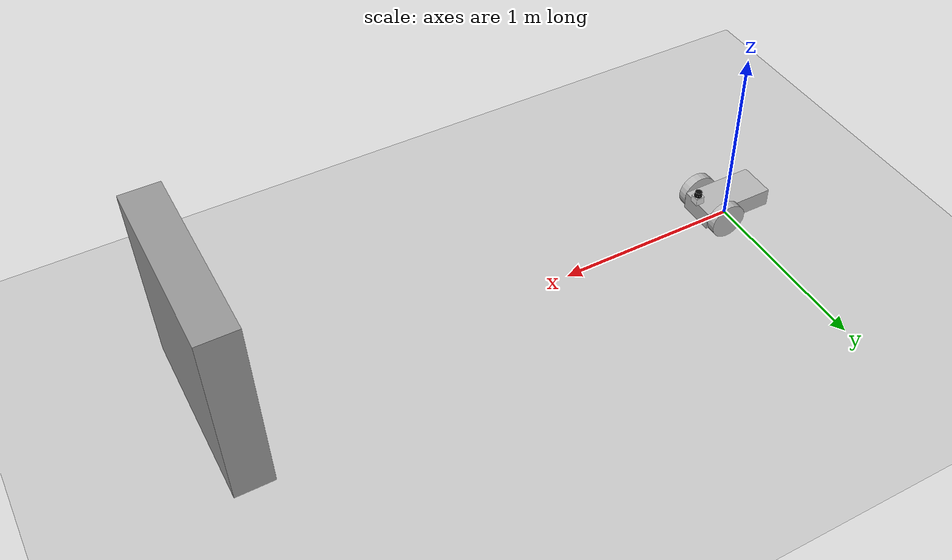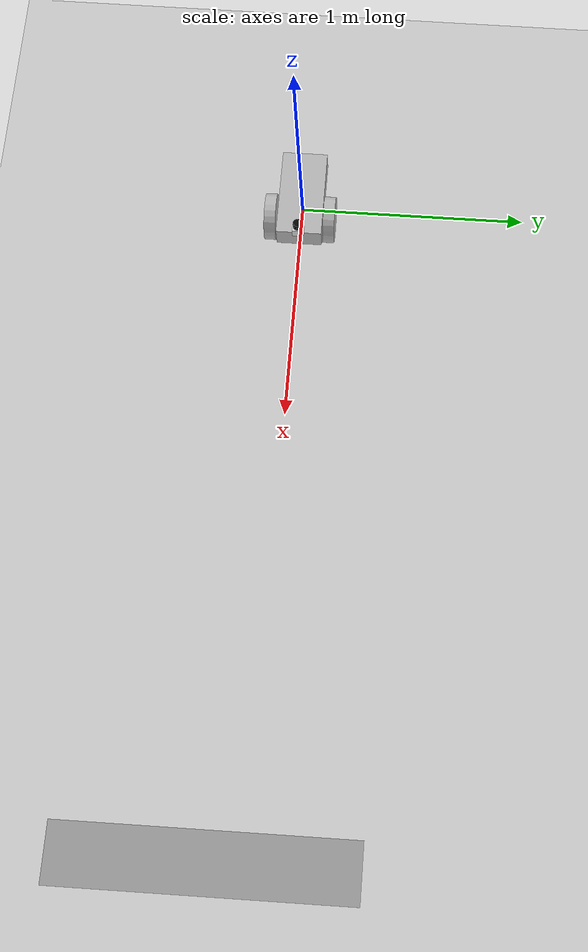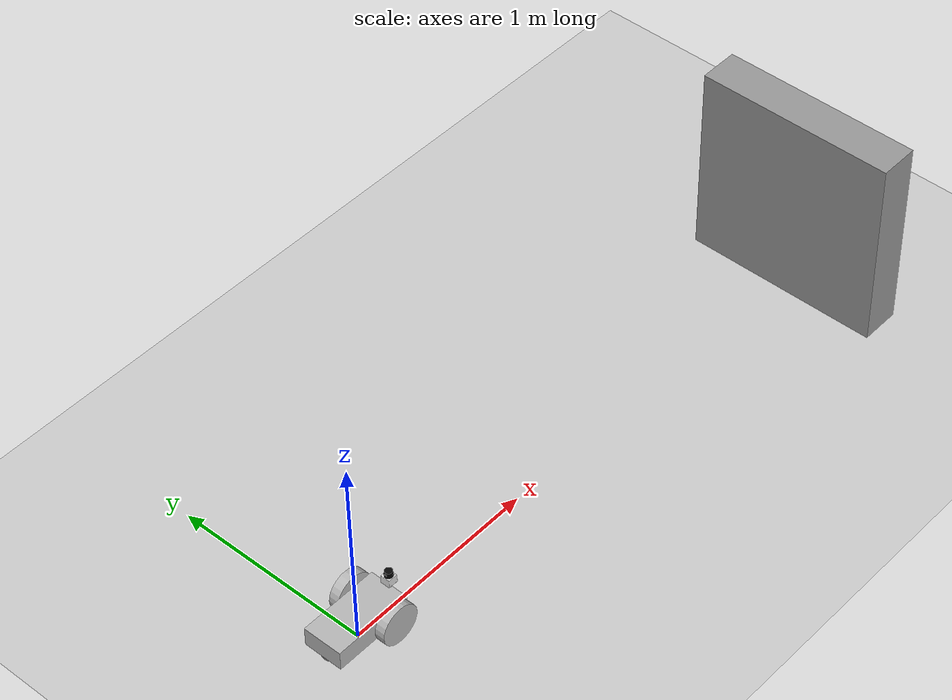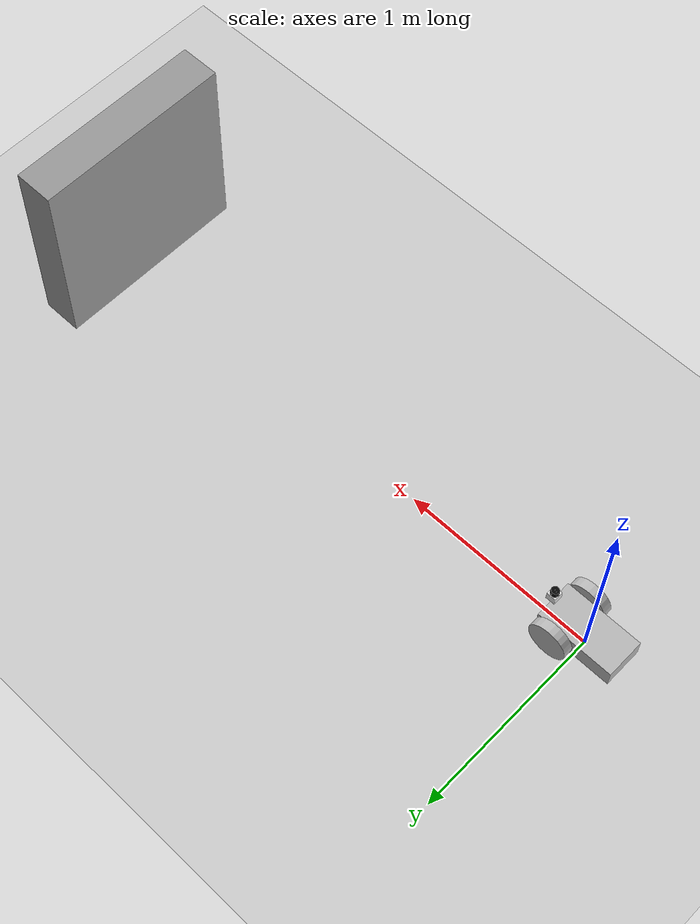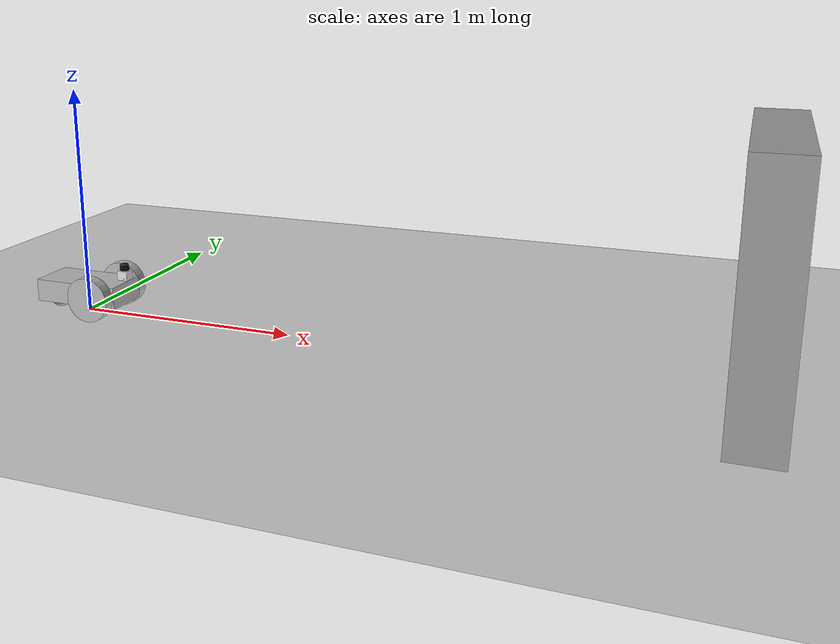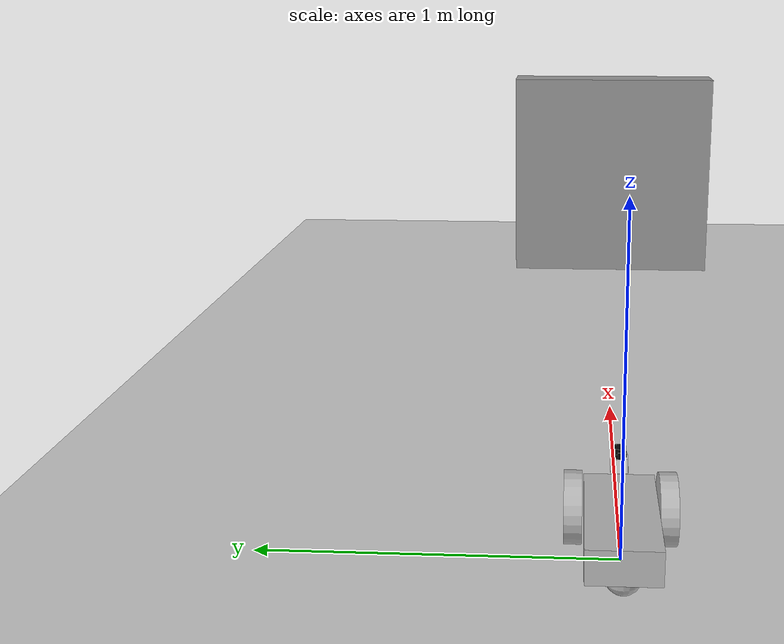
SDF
<sdf version="1.6">
 <world name="default">
  <light name="sun" type="directional">
   <pose>0 0 10 0 -0 0</pose>
   <diffuse>0.8 0.8 0.8 1</diffuse>
   <specular>0.2 0.2 0.2 1</specular>
   <attenuation>
    <range>1000</range>
    <constant>0.9</constant>
    <linear>0.01</linear>
    <quadratic>0.001</quadratic>
   </attenuation>
   <direction>-0.5 0.1 -0.9</direction>
  </light>
  <model name="ground_plane">
   <static>1</static>
   <link name="link">
    <collision name="collision">
     <geometry><plane><normal>0 0 1</normal><size>100 100</size></plane></geometry>
     <surface><friction><ode><mu>100</mu><mu2>50</mu2></ode></friction></surface>
    </collision>
    <visual name="visual">
     <cast_shadows>0</cast_shadows>
     <geometry><plane><normal>0 0 1</normal><size>100 100</size></plane></geometry>
     <material>
      <script><uri>file://media/materials/scripts/gazebo.material</uri><name>Gazebo/Grey</name></script>
     </material>
    </visual>
   </link>
  </model>
  <gravity>0 0 -9.8</gravity>
  <magnetic_field>6e-06 2.3e-05 -4.2e-05</magnetic_field>
  <atmosphere type="adiabatic"/>
  <physics name="default_physics" default="0" type="ode">
   <max_step_size>0.001</max_step_size>
   <real_time_factor>1</real_time_factor>
   <real_time_update_rate>1000</real_time_update_rate>
  </physics>
  <scene><ambient>0.4 0.4 0.4 1</ambient><background>0.7 0.7 0.7 1</background><shadows>1</shadows></scene>
  <spherical_coordinates>
   <surface_model>EARTH_WGS84</surface_model>
   <latitude_deg>0</latitude_deg>
   <longitude_deg>0</longitude_deg>
   <elevation>0</elevation>
   <heading_deg>0</heading_deg>
  </spherical_coordinates>
  <model name="unit_box">
   <pose>2.88406 -0.052854 0.5 0 -0 0</pose>
   <link name="link">
    <inertial>
     <mass>1</mass>
     <inertia>
      <ixx>0.166667</ixx>
      <ixy>0</ixy>
      <ixz>0</ixz>
      <iyy>0.166667</iyy>
      <iyz>0</iyz>
      <izz>0.166667</izz>
     </inertia>
    </inertial>
    <collision name="collision"><geometry><box><size>0.2 1 1</size></box></geometry></collision>
    <visual name="visual">
     <geometry><box><size>0.2 1 1</size></box></geometry>
     <material>
      <script><name>Gazebo/Grey</name><uri>file://media/materials/scripts/gazebo.material</uri></script>
     </material>
    </visual>
   </link>
  </model>
  <model name="laser">
   <static>false</static>
   <link name="chassis">
    <pose>0 0 .1 0 0 0</pose>
    <collision name="collision"><geometry><box><size>.4 .2 .1</size></box></geometry></collision>
    <visual name="visual"><geometry><box><size>.4 .2 .1</size></box></geometry></visual>
    <collision name="caster_collision">
     <pose>-0.15 0 -0.05 0 0 0</pose>
     <geometry><sphere><radius>.05</radius></sphere></geometry>
     <surface><friction><ode><mu>0</mu><mu2>0</mu2><slip1>1.0</slip1><slip2>1.0</slip2></ode></friction></surface>
    </collision>
    <visual name="caster_visual">
     <pose>-0.15 0 -0.05 0 0 0</pose>
     <geometry><sphere><radius>.05</radius></sphere></geometry>
    </visual>
   </link>
   <link name="left_wheel">
    <pose>0.1 0.13 0.1 0 1.5707 1.5707</pose>
    <collision name="collision">
     <geometry><cylinder><radius>.1</radius><length>.05</length></cylinder></geometry>
    </collision>
    <visual name="visual">
     <geometry><cylinder><radius>.1</radius><length>.05</length></cylinder></geometry>
    </visual>
   </link>
   <link name="right_wheel">
    <pose>0.1 -0.13 0.1 0 1.5707 1.5707</pose>
    <collision name="collision">
     <geometry><cylinder><radius>.1</radius><length>.05</length></cylinder></geometry>
    </collision>
    <visual name="visual">
     <geometry><cylinder><radius>.1</radius><length>.05</length></cylinder></geometry>
    </visual>
   </link>
   <joint type="revolute" name="left_wheel_hinge">
    <pose>0 0 -0.03 0 0 0</pose>
    <child>left_wheel</child>
    <parent>chassis</parent>
    <axis><xyz>0 0 1</xyz></axis>
   </joint>
   <joint type="revolute" name="right_wheel_hinge">
    <pose>0 0 0.03 0 0 0</pose>
    <child>right_wheel</child>
    <parent>chassis</parent>
    <axis><xyz>0 0 1</xyz></axis>
   </joint>
   <include><uri>model://hokuyo</uri><pose>0.2 0 0.2 0 0 0</pose></include>
   <joint name="hokuyo_joint" type="fixed"><child>hokuyo::link</child><parent>chassis</parent></joint>
  </model>
 </world>
</sdf>

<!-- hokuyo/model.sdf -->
<sdf version="1.4">
  <model name="hokuyo">
    <link name="link">
      <inertial>
        <mass>0.1</mass>
      </inertial>
      <visual name="visual">
        <geometry>
          <mesh>
            <uri>model://hokuyo/meshes/hokuyo.dae</uri>
          </mesh>
        </geometry>
      </visual>
      <sensor name="laser" type="ray">
        <pose>0.01 0 0.03 0 -0 0</pose>
        <ray>
          <scan>
            <horizontal>
              <samples>640</samples>
              <resolution>1</resolution>
              <min_angle>-2.26889</min_angle>
              <max_angle>2.268899</max_angle>
            </horizontal>
          </scan>
          <range>
            <min>0.08</min>
            <max>10</max>
            <resolution>0.01</resolution>
          </range>
        </ray>
        <plugin name="laser" filename="libRayPlugin.so" />
        <always_on>1</always_on>
        <update_rate>30</update_rate>
        <visualize>true</visualize>
      </sensor>
    </link>
  </model>
</sdf>
